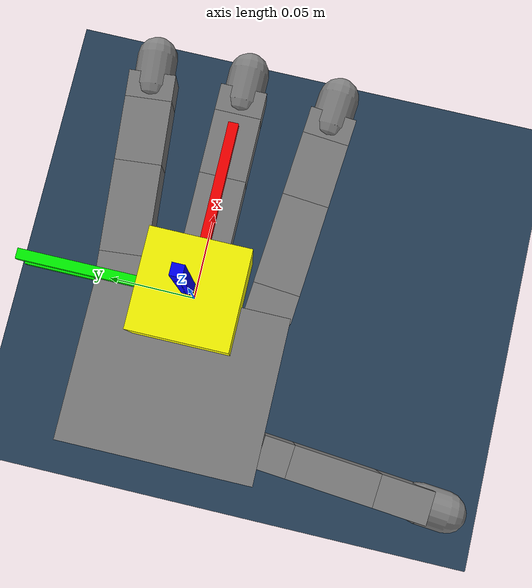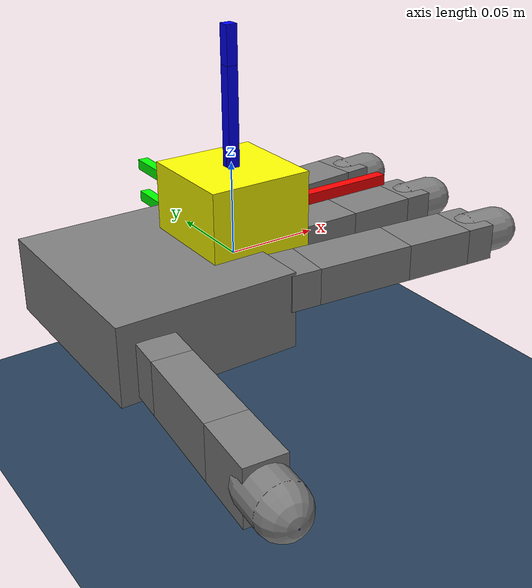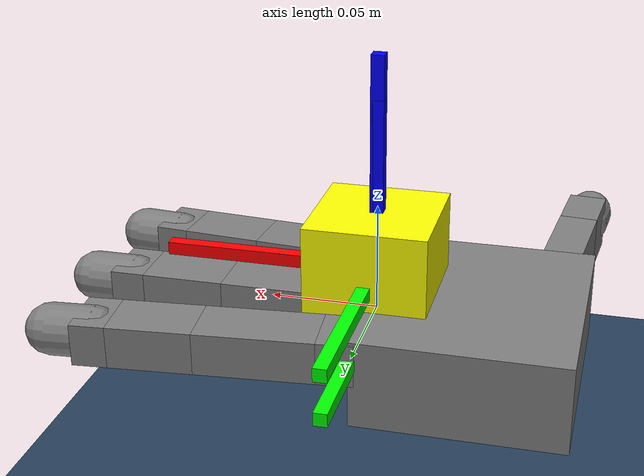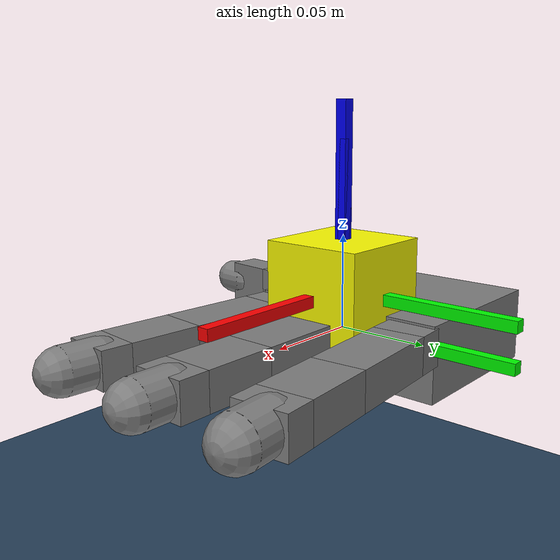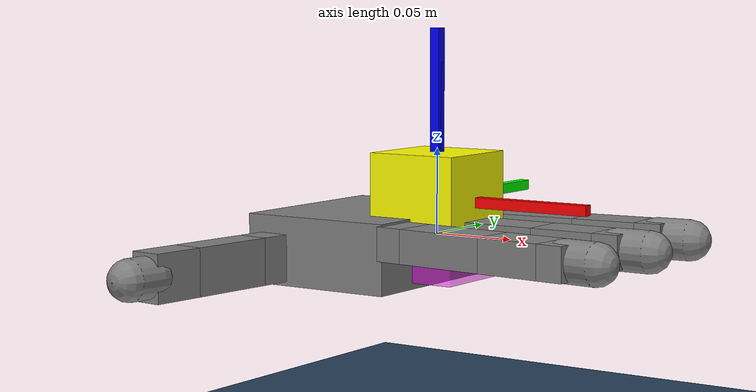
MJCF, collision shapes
<mujoco model="right_allegro_hand scene">
  <include file="right_hand.xml"/>

  <statistic center="0 0 0" extent="0.3"/>

  <visual>
    <rgba haze="0.15 0.25 0.35 1"/>
    <quality shadowsize="8192"/>
    <global azimuth="130" elevation="-40"/>
  </visual>

  <asset>
    <mesh name="object" file="../../env/pc/real_cube.stl"/>
    <texture name='cube_surface' file="../textures/iris_block.png" gridsize="3 4" gridlayout=".U..LFRB.D.."/>
    <material name="MatCube" texture="cube_surface" specular="5" shininess=".0"/>
    <texture type="skybox" builtin="gradient" rgb1="0.3 0.5 0.7" rgb2="0 0 0" width="512" height="3072"/>
    <texture type="2d" name="groundplane" builtin="checker" mark="edge" rgb1="0.2 0.3 0.4" rgb2="0.1 0.2 0.3"
      markrgb="0.8 0.8 0.8" width="300" height="300"/>
    <material name="groundplane" texture="groundplane" texuniform="true" texrepeat="5 5" reflectance="0.2"/>
  </asset>

  <worldbody>
    <light pos="0 0 1"/>
    <light pos="0.3 0 1.5" dir="0 0 -1" directional="true"/>
    <light diffuse="0.7 0.7 0.7" pos="2 2 2" dir="0 0 -1" directional="true"/>
    <geom name="floor" pos="0 0 -0.1" size="0 0 0.05" type="plane" material="groundplane"/>

    <body name="goal">
        <geom name="vcube" size="0.026 0.026 0.026" material="MatCube" type="box" conaffinity="0" contype="0"
        pos="0.0 0.0 0.0"
              rgba="1 0  1 0.5"/>
        <site type="box" size="0.05 0.003 0.003" rgba="1 0 0 1" pos="0.05 0 0"/>
        <site type="box" size="0.003 0.05 0.003" rgba="0 1 0 1" pos="0 0.05 0"/>
        <site type="box" size="0.003 0.003 0.05" rgba="0 0 1 1" pos="0 0 0.05"/>
    </body>

    <body name="cube" pos="0.0 0.0 0.020">
        <freejoint name="cube_table"/>
        <geom name="cube"
          type="mesh" mesh="object"
          mass="0.2" material="MatCube"
          quat="1 0 0 0" friction="0.5" rgba="1.0 1.0 0 0.99"
          />
        <site type="box" size="0.05 0.003 0.003" rgba="1 0 0 1" pos="0.05 0 0"/>
        <site type="box" size="0.003 0.05 0.003" rgba="0 1 0 1" pos="0 0.05 0"/>
        <site type="box" size="0.003 0.003 0.05" rgba="0 0 1 1" pos="0 0 0.05"/>
    </body>
  </worldbody>

  <contact>
    <exclude body1="ff_base" body2="cube"/>
    <exclude body1="mf_base" body2="cube"/>
    <exclude body1="rf_base" body2="cube"/>
    <exclude body1="th_base" body2="cube"/>
  </contact>
</mujoco>

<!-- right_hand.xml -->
<mujoco model="allegro_right">
  <compiler angle="radian" autolimits="true"/>

  <option cone="elliptic" impratio="10"/>

  <default>
    <default class="allegro_right">
      <joint axis="0 1 0" damping=".1"/>
      <position kp="1"/>
      <geom density="800"/>

      <default class="visual">
        <geom type="mesh" contype="0" conaffinity="0" group="2" material="black"/>
        <default class="palm_visual">
          <geom mesh="base_link"/>
        </default>
        <default class="base_visual">
          <geom mesh="link_0.0"/>
        </default>
        <default class="proximal_visual">
          <geom mesh="link_1.0"/>
        </default>
        <default class="medial_visual">
          <geom mesh="link_2.0"/>
        </default>
        <default class="distal_visual">
          <geom mesh="link_3.0"/>
        </default>
        <default class="fingertip_visual">
          <geom pos="0 0 0.0267" material="white" mesh="link_3.0_tip"/>
        </default>
        <default class="thumbtip_visual">
          <geom pos="0 0 0.0423" material="white" mesh="link_15.0_tip"/>
        </default>
      </default>

      <default class="collision">
        <geom group="3" type="box" mass="0"/>
        <default class="palm_collision">
          <geom size="0.0204 0.0565 0.0475" pos="-0.0093 0 -0.0475"/>
        </default>
        <default class="base_collision">
          <geom size="0.0098 0.01375 0.0082" pos="0 0 0.0082"/>
          <default class="thumb_base_collision">
            <geom size="0.0179 0.017 0.02275" pos="-0.0179 0.009 0.0145"/>
          </default>
        </default>
        <default class="proximal_collision">
          <geom size="0.0098 0.01375 0.027" pos="0 0 0.027"/>
          <default class="thumb_proximal_collision">
            <geom size="0.0098 0.01375 0.00885" pos="0 0 0.00885"/>
          </default>
        </default>
        <default class="medial_collision">
          <geom size="0.0098 0.01375 0.0192" pos="0 0 0.0192"/>
          <default class="thumb_medial_collision">
            <geom size="0.0098 0.01375 0.0257" pos="0 0 0.0257"/>
          </default>
        </default>
        <default class="distal_collision">
          <geom size="0.0098 0.01375 0.008" pos="0 0 0.008"/>
          <default class="thumb_distal_collision">
            <geom size="0.0098 0.01375 0.0157" pos="0 0 0.0157"/>
          </default>
        </default>
        <default class="fingertip_collision">
          <geom type="capsule" size="0.012 0.01" pos="0 0 0.019"/>
          <default class="thumbtip_collision">
            <geom type="capsule" size="0.012 0.008" pos="0 0 0.035"/>
          </default>
        </default>
      </default>

      <default class="base">
        <joint axis="0 0 1" range="-0.47 0.47"/>
        <position ctrlrange="-0.47 0.47"/>
      </default>
      <default class="proximal">
        <joint range="-0.196 1.61"/>
        <position ctrlrange="-0.196 1.61"/>
      </default>
      <default class="medial">
        <joint range="-0.174 1.709"/>
        <position ctrlrange="-0.174 1.709"/>
      </default>
      <default class="distal">
        <joint range="-0.227 1.618"/>
        <position ctrlrange="-0.227 1.618"/>
      </default>
      <default class="thumb_base">
        <joint axis="-1 0 0" range="0.263 1.396"/>
        <position ctrlrange="0.263 1.396"/>
      </default>
      <default class="thumb_proximal">
        <joint axis="0 0 1" range="-0.105 2.163"/>
        <position ctrlrange="-0.105 2.163"/>
      </default>
      <default class="thumb_medial">
        <joint range="-0.189 1.644"/>
        <position ctrlrange="-0.189 1.644"/>
      </default>
      <default class="thumb_distal">
        <joint range="-0.162 1.719"/>
        <position ctrlrange="-0.162 1.719"/>
      </default>
    </default>
  </default>

  <asset>
    <material name="black" rgba="0.2 0.2 0.2 1"/>
    <material name="white" rgba="0.9 0.9 0.9 1"/>

    <mesh file="../allegro/assets/base_link.stl"/>
    <mesh file="../allegro/assets/link_0.0.stl"/>
    <mesh file="../allegro/assets/link_1.0.stl"/>
    <mesh file="../allegro/assets/link_2.0.stl"/>
    <mesh file="../allegro/assets/link_3.0.stl"/>
    <mesh file="../allegro/assets/link_3.0_tip.stl"/>
    <mesh file="../allegro/assets/link_12.0_right.stl"/>
    <mesh file="../allegro/assets/link_13.0.stl"/>
    <mesh file="../allegro/assets/link_14.0.stl"/>
    <mesh file="../allegro/assets/link_15.0.stl"/>
    <mesh file="../allegro/assets/link_15.0_tip.stl"/>
  </asset>

  <worldbody>
    <body name="palm" quat="0 1 0 1" childclass="allegro_right">
      <geom class="palm_visual" mesh="base_link"/>
      <geom class="palm_collision" name="palm" friction="0.5"/>
      <!-- First finger -->
      <body name="ff_base" pos="0 0.0435 -0.001542" quat="0.999048 -0.0436194 0 0" gravcomp="1">
        <joint name="ffj0" class="base"/>
        <geom class="base_visual"/>
        <geom class="base_collision" name="ff_base"/>
        <body name="ff_proximal" pos="0 0 0.0164" gravcomp="1">
          <joint name="ffj1" class="proximal"/>
          <geom class="proximal_visual"/>
          <geom class="proximal_collision" name="ff_proximal"/>
          <body name="ff_medial" pos="0 0 0.054" gravcomp="1">
            <joint name="ffj2" class="medial"/>
            <geom class="medial_visual"/>
            <geom class="medial_collision" name="ff_medial"/>
            <body name="ff_distal" pos="0 0 0.0384" gravcomp="1">
              <joint name="ffj3" class="distal"/>
              <geom class="distal_visual"/>
              <geom class="distal_collision" name="ff_distal"/>
              <body name="ff_tip" gravcomp="1">
                <geom class="fingertip_visual"/>
                <geom class="fingertip_collision" name="fingertip0"/>
                <site rgba="0.0 0.0 0.5 1" size="0.001" pos="0 0 0.0384" name="ftp_0"/>
              </body>
            </body>
          </body>
        </body>
      </body>
      <!-- Middle finger -->
      <body name="mf_base" pos="0 0 0.0007" gravcomp="1">
        <joint name="mfj0" class="base"/>
        <geom class="base_visual"/>
        <geom class="base_collision" name="mf_base"/>
        <body name="mf_proximal" pos="0 0 0.0164" gravcomp="1">
          <joint name="mfj1" class="proximal"/>
          <geom class="proximal_visual"/>
          <geom class="proximal_collision" name="mf_proximal"/>
          <body name="mf_medial" pos="0 0 0.054" gravcomp="1">
            <joint name="mfj2" class="medial"/>
            <geom class="medial_visual"/>
            <geom class="medial_collision" name="mf_medial"/>
            <body name="mf_distal" pos="0 0 0.0384" gravcomp="1">
              <joint name="mfj3" class="distal"/>
              <geom class="distal_visual"/>
              <geom class="distal_collision" name="mf_distal"/>
              <body name="mf_tip" gravcomp="1">
                <geom class="fingertip_visual"/>
                <geom class="fingertip_collision" name="fingertip1"/>
                <site rgba="0.0 0.0 0.5 1" size="0.001" pos="0 0 0.0384" name="ftp_1"/>
              </body>
            </body>
          </body>
        </body>
      </body>
      <!-- Ring finger -->
      <body name="rf_base" pos="0 -0.0435 -0.001542" quat="0.999048 0.0436194 0 0" gravcomp="1">
        <joint name="rfj0" class="base"/>
        <geom class="base_visual"/>
        <geom class="base_collision" name="rf_base"/>
        <body name="rf_proximal" pos="0 0 0.0164" gravcomp="1">
          <joint name="rfj1" class="proximal"/>
          <geom class="proximal_visual"/>
          <geom class="proximal_collision" name="rf_proximal"/>
          <body name="rf_medial" pos="0 0 0.054" gravcomp="1">
            <joint name="rfj2" class="medial"/>
            <geom class="medial_visual"/>
            <geom class="medial_collision" name="rf_medial"/>
            <body name="rf_distal" pos="0 0 0.0384" gravcomp="1">
              <joint name="rfj3" class="distal"/>
              <geom class="distal_visual"/>
              <geom class="distal_collision" name="rf_distal"/>
              <body name="rf_tip" gravcomp="1">
                <geom class="fingertip_visual"/>
                <geom class="fingertip_collision" name="fingertip2"/>
                <site rgba="0.0 0.0 0.5 1" size="0.001" pos="0 0 0.0384" name="ftp_2"/>
              </body>
            </body>
          </body>
        </body>
      </body>
      <!-- Thumb -->
      <body name="th_base" pos="-0.0182 0.019333 -0.045987" quat="0.477714 -0.521334 -0.521334 -0.477714" gravcomp="1">
        <joint name="thj0" class="thumb_base"/>
        <geom class="visual" mesh="link_12.0_right"/>
        <geom class="thumb_base_collision" name="th_base"/>
        <body name="th_proximal" pos="-0.027 0.005 0.0399" gravcomp="1">
          <joint name="thj1" class="thumb_proximal"/>
          <geom class="visual" mesh="link_13.0"/>
          <geom class="thumb_proximal_collision" name="th_proximal"/>
          <body name="th_medial" pos="0 0 0.0177" gravcomp="1">
            <joint name="thj2" class="thumb_medial"/>
            <geom class="visual" mesh="link_14.0"/>
            <geom class="thumb_medial_collision" name="th_medial"/>
            <body name="th_distal" pos="0 0 0.0514" gravcomp="1">
              <joint name="thj3" class="thumb_distal"/>
              <geom class="visual" mesh="link_15.0"/>
              <geom class="thumb_distal_collision" name="th_distal"/>
              <body name="th_tip" gravcomp="1">
                <geom class="thumbtip_visual"/>
                <geom class="thumbtip_collision" name="fingertip3"/>
                <site rgba="0.0 0.0 0.5 1" size="0.001" pos="0 0 0.054" name="ftp_3"/>
              </body>
            </body>
          </body>
        </body>
      </body>
    </body>
  </worldbody>

  <contact>
    <exclude body1="palm" body2="ff_base"/>
    <exclude body1="palm" body2="mf_base"/>
    <exclude body1="palm" body2="rf_base"/>
    <exclude body1="palm" body2="th_base"/>
    <exclude body1="palm" body2="th_proximal"/>
  </contact>

  <actuator>
    <position name="ffa0" joint="ffj0" class="base"/>
    <position name="ffa1" joint="ffj1" class="proximal"/>
    <position name="ffa2" joint="ffj2" class="medial"/>
    <position name="ffa3" joint="ffj3" class="distal"/>
    <position name="mfa0" joint="mfj0" class="base"/>
    <position name="mfa1" joint="mfj1" class="proximal"/>
    <position name="mfa2" joint="mfj2" class="medial"/>
    <position name="mfa3" joint="mfj3" class="distal"/>
    <position name="rfa0" joint="rfj0" class="base"/>
    <position name="rfa1" joint="rfj1" class="proximal"/>
    <position name="rfa2" joint="rfj2" class="medial"/>
    <position name="rfa3" joint="rfj3" class="distal"/>
    <position name="tha0" joint="thj0" class="thumb_base"/>
    <position name="tha1" joint="thj1" class="thumb_proximal"/>
    <position name="tha2" joint="thj2" class="thumb_medial"/>
    <position name="tha3" joint="thj3" class="thumb_distal"/>
  </actuator>
</mujoco>
